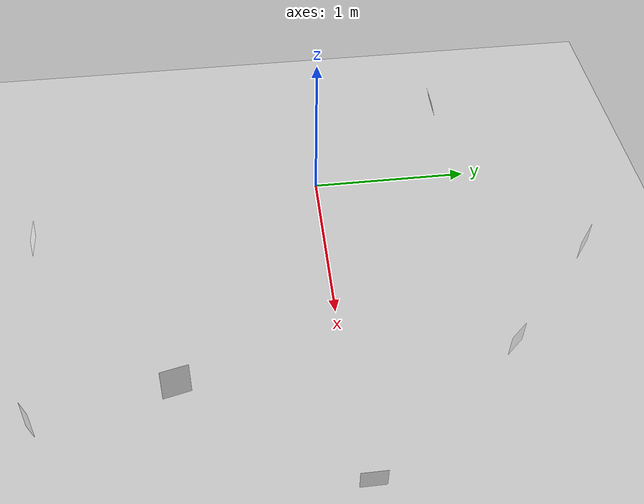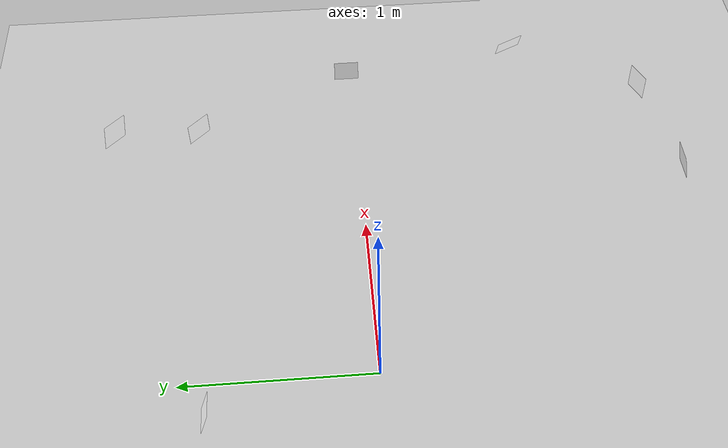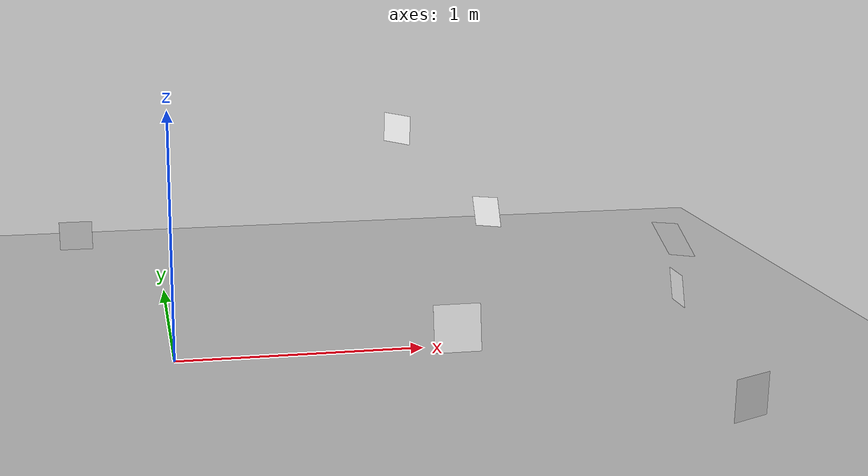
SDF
<sdf version="1.6">
 <world name="default">
  <light name="sun" type="directional">
   <pose>0 0 10 0 -0 0</pose>
   <diffuse>0.8 0.8 0.8 1</diffuse>
   <specular>0.1 0.1 0.1 1</specular>
   <attenuation>
    <range>1000</range>
    <constant>0.9</constant>
    <linear>0.01</linear>
    <quadratic>0.001</quadratic>
   </attenuation>
   <direction>-0.5 0.5 -1</direction>
  </light>
  <model name="ground_plane">
   <static>1</static>
   <link name="link">
    <collision name="collision">
     <geometry><plane><normal>0 0 1</normal><size>100 100</size></plane></geometry>
     <surface><friction><ode><mu>100</mu><mu2>50</mu2></ode></friction></surface>
    </collision>
    <visual name="visual">
     <cast_shadows>0</cast_shadows>
     <geometry><plane><normal>0 0 1</normal><size>100 100</size></plane></geometry>
     <material>
      <script><uri>file://media/materials/scripts/gazebo.material</uri><name>Gazebo/Grey</name></script>
     </material>
    </visual>
   </link>
  </model>
  <gravity>0 0 -9.8</gravity>
  <magnetic_field>6e-06 2.3e-05 -4.2e-05</magnetic_field>
  <atmosphere type="adiabatic"/>
  <physics name="default_physics" default="0" type="ode">
   <max_step_size>0.001</max_step_size>
   <real_time_factor>1</real_time_factor>
   <real_time_update_rate>1000</real_time_update_rate>
  </physics>
  <scene><ambient>0.4 0.4 0.4 1</ambient><background>0.7 0.7 0.7 1</background><shadows>1</shadows></scene>
  <spherical_coordinates>
   <surface_model>EARTH_WGS84</surface_model>
   <latitude_deg>0</latitude_deg>
   <longitude_deg>0</longitude_deg>
   <elevation>0</elevation>
   <heading_deg>0</heading_deg>
  </spherical_coordinates>
  <model name="aruco_visual_marker_1">
   <link name="marker">
    <visual name="visual">
     <geometry><box><size>0.14 0.14 1e-05</size></box></geometry>
     <material>
      <script>
       <uri>model://aruco_visual_marker_1/materials/scripts</uri>
       <uri>model://aruco_visual_marker_1/materials/textures</uri>
       <name>ArucoVisualMarker1/Marker</name>
      </script>
      <ambient>1 1 1 1</ambient>
      <diffuse>1 1 1 1</diffuse>
      <specular>0 0 0 1</specular>
      <emissive>1 1 1 0</emissive>
      <shader type="vertex"><normal_map>__default__</normal_map></shader>
     </material>
    </visual>
    <collision name="collision"><geometry><box><size>0.14 0.14 1e-05</size></box></geometry></collision>
   </link>
   <link name="marker_pad">
    <pose frame="marker">0 0 -1e-05 0 -0 0</pose>
    <visual name="visual">
     <geometry><box><size>0.14 0.14 1e-05</size></box></geometry>
     <material>
      <lighting>1</lighting>
      <script><uri>file://media/materials/scripts/gazebo.material</uri><name>Gazebo/White</name></script>
      <ambient>0.3 0.3 0.3 1</ambient>
      <diffuse>0.7 0.7 0.7 1</diffuse>
      <specular>0.01 0.01 0.01 1</specular>
      <emissive>1 1 1 0</emissive>
      <shader type="vertex"><normal_map>__default__</normal_map></shader>
     </material>
    </visual>
    <collision name="collision"><geometry><box><size>0.14 0.14 1e-05</size></box></geometry></collision>
   </link>
   <joint name="marker_JOINT_marker_pad" type="revolute">
    <parent>marker</parent>
    <child>marker_pad</child>
    <axis>
     <xyz>0 0 1</xyz>
     <limit><upper>0</upper><lower>0</lower></limit>
     <use_parent_model_frame>0</use_parent_model_frame>
     <dynamics><spring_reference>0</spring_reference><spring_stiffness>0</spring_stiffness></dynamics>
    </axis>
   </joint>
   <static>1</static>
   <pose>1.66677 -1.6141 0.342649 -1.55484 -0.006615 0.392963</pose>
  </model>
  <model name="aruco_visual_marker_2">
   <link name="marker">
    <visual name="visual">
     <geometry><box><size>0.14 0.14 1e-05</size></box></geometry>
     <material>
      <script>
       <uri>model://aruco_visual_marker_2/materials/scripts</uri>
       <uri>model://aruco_visual_marker_2/materials/textures</uri>
       <name>ArucoVisualMarker2/Marker</name>
      </script>
      <ambient>1 1 1 1</ambient>
      <diffuse>1 1 1 1</diffuse>
      <specular>0 0 0 1</specular>
      <emissive>1 1 1 0</emissive>
      <shader type="vertex"><normal_map>__default__</normal_map></shader>
     </material>
    </visual>
    <collision name="collision"><geometry><box><size>0.14 0.14 1e-05</size></box></geometry></collision>
   </link>
   <link name="marker_pad">
    <pose frame="marker">0 0 -1e-05 0 -0 0</pose>
    <visual name="visual">
     <geometry><box><size>0.14 0.14 1e-05</size></box></geometry>
     <material>
      <lighting>1</lighting>
      <script><uri>file://media/materials/scripts/gazebo.material</uri><name>Gazebo/White</name></script>
      <ambient>0.3 0.3 0.3 1</ambient>
      <diffuse>0.7 0.7 0.7 1</diffuse>
      <specular>0.01 0.01 0.01 1</specular>
      <emissive>1 1 1 0</emissive>
      <shader type="vertex"><normal_map>__default__</normal_map></shader>
     </material>
    </visual>
    <collision name="collision"><geometry><box><size>0.14 0.14 1e-05</size></box></geometry></collision>
   </link>
   <joint name="marker_JOINT_marker_pad" type="revolute">
    <parent>marker</parent>
    <child>marker_pad</child>
    <axis>
     <xyz>0 0 1</xyz>
     <limit><upper>0</upper><lower>0</lower></limit>
     <use_parent_model_frame>0</use_parent_model_frame>
     <dynamics><spring_reference>0</spring_reference><spring_stiffness>0</spring_stiffness></dynamics>
    </axis>
   </joint>
   <static>1</static>
   <pose>0.749945 -1.60484 0.609933 -1.76171 0 0</pose>
  </model>
  <model name="aruco_visual_marker_3">
   <link name="marker">
    <visual name="visual">
     <geometry><box><size>0.14 0.14 1e-05</size></box></geometry>
     <material>
      <script>
       <uri>model://aruco_visual_marker_3/materials/scripts</uri>
       <uri>model://aruco_visual_marker_3/materials/textures</uri>
       <name>ArucoVisualMarker3/Marker</name>
      </script>
      <ambient>1 1 1 1</ambient>
      <diffuse>1 1 1 1</diffuse>
      <specular>0 0 0 1</specular>
      <emissive>1 1 1 0</emissive>
      <shader type="vertex"><normal_map>__default__</normal_map></shader>
     </material>
    </visual>
    <collision name="collision"><geometry><box><size>0.14 0.14 1e-05</size></box></geometry></collision>
   </link>
   <link name="marker_pad">
    <pose frame="marker">0 0 -1e-05 0 -0 0</pose>
    <visual name="visual">
     <geometry><box><size>0.14 0.14 1e-05</size></box></geometry>
     <material>
      <lighting>1</lighting>
      <script><uri>file://media/materials/scripts/gazebo.material</uri><name>Gazebo/White</name></script>
      <ambient>0.3 0.3 0.3 1</ambient>
      <diffuse>0.7 0.7 0.7 1</diffuse>
      <specular>0.01 0.01 0.01 1</specular>
      <emissive>1 1 1 0</emissive>
      <shader type="vertex"><normal_map>__default__</normal_map></shader>
     </material>
    </visual>
    <collision name="collision"><geometry><box><size>0.14 0.14 1e-05</size></box></geometry></collision>
   </link>
   <joint name="marker_JOINT_marker_pad" type="revolute">
    <parent>marker</parent>
    <child>marker_pad</child>
    <axis>
     <xyz>0 0 1</xyz>
     <limit><upper>0</upper><lower>0</lower></limit>
     <use_parent_model_frame>0</use_parent_model_frame>
     <dynamics><spring_reference>0</spring_reference><spring_stiffness>0</spring_stiffness></dynamics>
    </axis>
   </joint>
   <static>1</static>
   <pose>1.48624 0.884572 0.338902 -2.4192 -1.42805 -3.14159</pose>
  </model>
  <model name="aruco_visual_marker_4">
   <link name="marker">
    <visual name="visual">
     <geometry><box><size>0.14 0.14 1e-05</size></box></geometry>
     <material>
      <script>
       <uri>model://aruco_visual_marker_4/materials/scripts</uri>
       <uri>model://aruco_visual_marker_4/materials/textures</uri>
       <name>ArucoVisualMarker4/Marker</name>
      </script>
      <ambient>1 1 1 1</ambient>
      <diffuse>1 1 1 1</diffuse>
      <specular>0 0 0 1</specular>
      <emissive>1 1 1 0</emissive>
      <shader type="vertex"><normal_map>__default__</normal_map></shader>
     </material>
    </visual>
    <collision name="collision"><geometry><box><size>0.14 0.14 1e-05</size></box></geometry></collision>
   </link>
   <link name="marker_pad">
    <pose frame="marker">0 0 -1e-05 0 -0 0</pose>
    <visual name="visual">
     <geometry><box><size>0.14 0.14 1e-05</size></box></geometry>
     <material>
      <lighting>1</lighting>
      <script><uri>file://media/materials/scripts/gazebo.material</uri><name>Gazebo/White</name></script>
      <ambient>0.3 0.3 0.3 1</ambient>
      <diffuse>0.7 0.7 0.7 1</diffuse>
      <specular>0.01 0.01 0.01 1</specular>
      <emissive>1 1 1 0</emissive>
      <shader type="vertex"><normal_map>__default__</normal_map></shader>
     </material>
    </visual>
    <collision name="collision"><geometry><box><size>0.14 0.14 1e-05</size></box></geometry></collision>
   </link>
   <joint name="marker_JOINT_marker_pad" type="revolute">
    <parent>marker</parent>
    <child>marker_pad</child>
    <axis>
     <xyz>0 0 1</xyz>
     <limit><upper>0</upper><lower>0</lower></limit>
     <use_parent_model_frame>0</use_parent_model_frame>
     <dynamics><spring_reference>0</spring_reference><spring_stiffness>0</spring_stiffness></dynamics>
    </axis>
   </joint>
   <static>1</static>
   <pose>1.69808 -0.851159 0.640358 -2.78592 -1.03581 3.14159</pose>
  </model>
  <model name="aruco_visual_marker_5">
   <link name="marker">
    <visual name="visual">
     <geometry><box><size>0.14 0.14 1e-05</size></box></geometry>
     <material>
      <script>
       <uri>model://aruco_visual_marker_5/materials/scripts</uri>
       <uri>model://aruco_visual_marker_5/materials/textures</uri>
       <name>ArucoVisualMarker5/Marker</name>
      </script>
      <ambient>1 1 1 1</ambient>
      <diffuse>1 1 1 1</diffuse>
      <specular>0 0 0 1</specular>
      <emissive>1 1 1 0</emissive>
      <shader type="vertex"><normal_map>__default__</normal_map></shader>
     </material>
    </visual>
    <collision name="collision"><geometry><box><size>0.14 0.14 1e-05</size></box></geometry></collision>
   </link>
   <link name="marker_pad">
    <pose frame="marker">0 0 -1e-05 0 -0 0</pose>
    <visual name="visual">
     <geometry><box><size>0.14 0.14 1e-05</size></box></geometry>
     <material>
      <lighting>1</lighting>
      <script><uri>file://media/materials/scripts/gazebo.material</uri><name>Gazebo/White</name></script>
      <ambient>0.3 0.3 0.3 1</ambient>
      <diffuse>0.7 0.7 0.7 1</diffuse>
      <specular>0.01 0.01 0.01 1</specular>
      <emissive>1 1 1 0</emissive>
      <shader type="vertex"><normal_map>__default__</normal_map></shader>
     </material>
    </visual>
    <collision name="collision"><geometry><box><size>0.14 0.14 1e-05</size></box></geometry></collision>
   </link>
   <joint name="marker_JOINT_marker_pad" type="revolute">
    <parent>marker</parent>
    <child>marker_pad</child>
    <axis>
     <xyz>0 0 1</xyz>
     <limit><upper>0</upper><lower>0</lower></limit>
     <use_parent_model_frame>0</use_parent_model_frame>
     <dynamics><spring_reference>0</spring_reference><spring_stiffness>0</spring_stiffness></dynamics>
    </axis>
   </joint>
   <static>1</static>
   <pose>2.08716 0.037987 0.189471 3.14159 -1.43651 3.14159</pose>
  </model>
  <model name="aruco_visual_marker_6">
   <link name="marker">
    <visual name="visual">
     <geometry><box><size>0.14 0.14 1e-05</size></box></geometry>
     <material>
      <script>
       <uri>model://aruco_visual_marker_6/materials/scripts</uri>
       <uri>model://aruco_visual_marker_6/materials/textures</uri>
       <name>ArucoVisualMarker6/Marker</name>
      </script>
      <ambient>1 1 1 1</ambient>
      <diffuse>1 1 1 1</diffuse>
      <specular>0 0 0 1</specular>
      <emissive>1 1 1 0</emissive>
      <shader type="vertex"><normal_map>__default__</normal_map></shader>
     </material>
    </visual>
    <collision name="collision"><geometry><box><size>0.14 0.14 1e-05</size></box></geometry></collision>
   </link>
   <link name="marker_pad">
    <pose frame="marker">0 0 -1e-05 0 -0 0</pose>
    <visual name="visual">
     <geometry><box><size>0.14 0.14 1e-05</size></box></geometry>
     <material>
      <lighting>1</lighting>
      <script><uri>file://media/materials/scripts/gazebo.material</uri><name>Gazebo/White</name></script>
      <ambient>0.3 0.3 0.3 1</ambient>
      <diffuse>0.7 0.7 0.7 1</diffuse>
      <specular>0.01 0.01 0.01 1</specular>
      <emissive>1 1 1 0</emissive>
      <shader type="vertex"><normal_map>__default__</normal_map></shader>
     </material>
    </visual>
    <collision name="collision"><geometry><box><size>0.14 0.14 1e-05</size></box></geometry></collision>
   </link>
   <joint name="marker_JOINT_marker_pad" type="revolute">
    <parent>marker</parent>
    <child>marker_pad</child>
    <axis>
     <xyz>0 0 1</xyz>
     <limit><upper>0</upper><lower>0</lower></limit>
     <use_parent_model_frame>0</use_parent_model_frame>
     <dynamics><spring_reference>0</spring_reference><spring_stiffness>0</spring_stiffness></dynamics>
    </axis>
   </joint>
   <static>1</static>
   <pose>1.13758 1.2653 0.669992 1.65064 0.067131 -0.697675</pose>
  </model>
  <model name="aruco_visual_marker_7">
   <link name="marker">
    <visual name="visual">
     <geometry><box><size>0.14 0.14 1e-05</size></box></geometry>
     <material>
      <script>
       <uri>model://aruco_visual_marker_7/materials/scripts</uri>
       <uri>model://aruco_visual_marker_7/materials/textures</uri>
       <name>ArucoVisualMarker7/Marker</name>
      </script>
      <ambient>1 1 1 1</ambient>
      <diffuse>1 1 1 1</diffuse>
      <specular>0 0 0 1</specular>
      <emissive>1 1 1 0</emissive>
      <shader type="vertex"><normal_map>__default__</normal_map></shader>
     </material>
    </visual>
    <collision name="collision"><geometry><box><size>0.14 0.14 1e-05</size></box></geometry></collision>
   </link>
   <link name="marker_pad">
    <pose frame="marker">0 0 -1e-05 0 -0 0</pose>
    <visual name="visual">
     <geometry><box><size>0.14 0.14 1e-05</size></box></geometry>
     <material>
      <lighting>1</lighting>
      <script><uri>file://media/materials/scripts/gazebo.material</uri><name>Gazebo/White</name></script>
      <ambient>0.3 0.3 0.3 1</ambient>
      <diffuse>0.7 0.7 0.7 1</diffuse>
      <specular>0.01 0.01 0.01 1</specular>
      <emissive>1 1 1 0</emissive>
      <shader type="vertex"><normal_map>__default__</normal_map></shader>
     </material>
    </visual>
    <collision name="collision"><geometry><box><size>0.14 0.14 1e-05</size></box></geometry></collision>
   </link>
   <joint name="marker_JOINT_marker_pad" type="revolute">
    <parent>marker</parent>
    <child>marker_pad</child>
    <axis>
     <xyz>0 0 1</xyz>
     <limit><upper>0</upper><lower>0</lower></limit>
     <use_parent_model_frame>0</use_parent_model_frame>
     <dynamics><spring_reference>0</spring_reference><spring_stiffness>0</spring_stiffness></dynamics>
    </axis>
   </joint>
   <static>1</static>
   <pose>-0.378295 0.820839 0.321697 1.87145 -0 0</pose>
  </model>
 </world>
</sdf>
